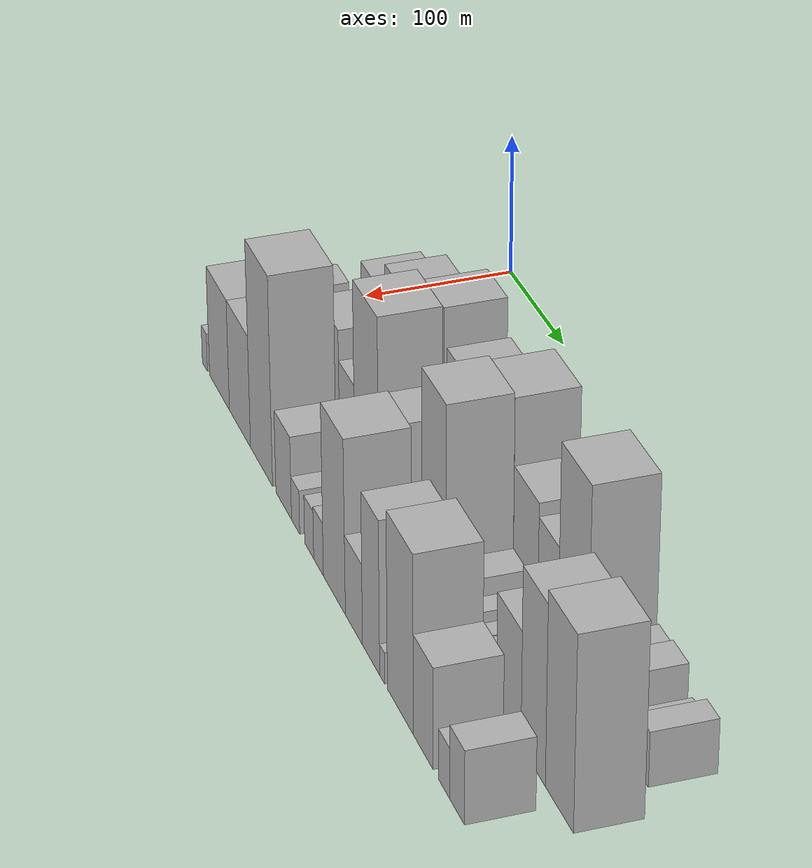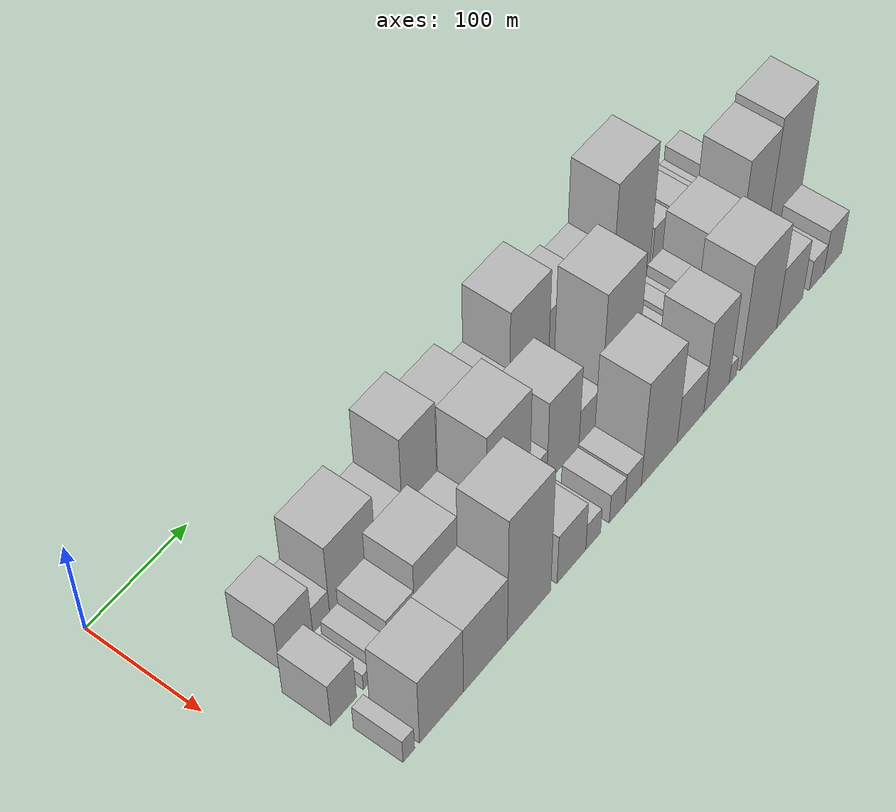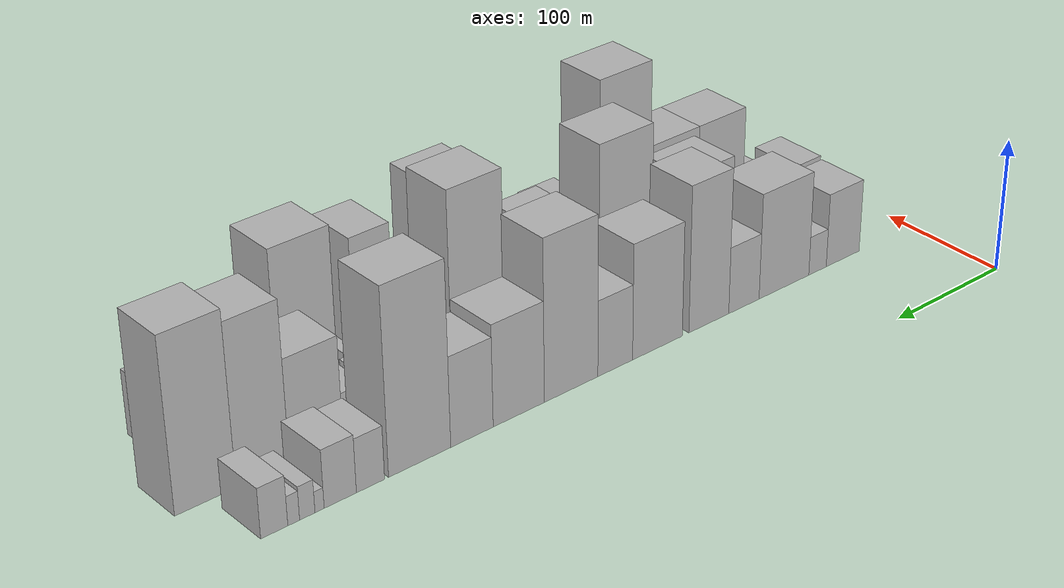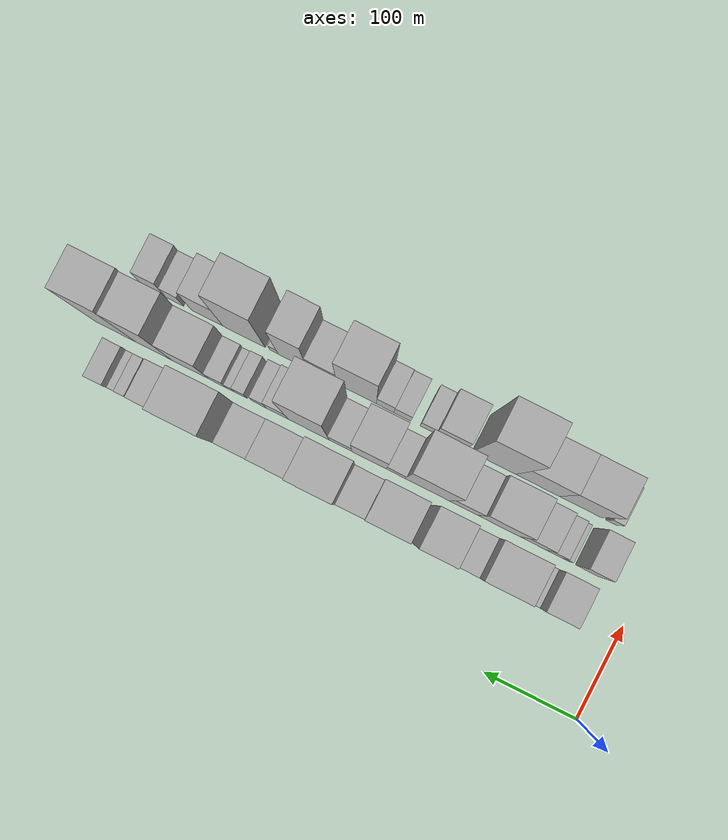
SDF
<sdf version="1.6">
 <world name="default">
  <model name="building_18">
   <static>1</static>
   <pose>100.0000 69.8813 0 0.000000 0.000000 0.000000</pose>
   <link name="link">
    <pose>0 0 28.50 0 0 0</pose>
    <collision name="collision"><geometry><box><size>40.0000 33.2389 57.0000</size></box></geometry></collision>
    <visual name="visual">
     <cast_shadows>0</cast_shadows>
     <geometry><box><size>40.0000 33.2389 57.0000</size></box></geometry>
     <material>
      <script>
       <uri>model://HANNAS_wall/materials/scripts</uri>
       <uri>model://HANNAS_wall/materials/textures</uri>
       <name>vrc/HANNAS_wall</name>
      </script>
     </material>
    </visual>
   </link>
  </model>
  <model name="building_19">
   <static>1</static>
   <pose>100.0000 95.2057 0 0.000000 0.000000 0.000000</pose>
   <link name="link">
    <pose>0 0 15.00 0 0 0</pose>
    <collision name="collision"><geometry><box><size>40.0000 17.4098 30.0000</size></box></geometry></collision>
    <visual name="visual">
     <cast_shadows>0</cast_shadows>
     <geometry><box><size>40.0000 17.4098 30.0000</size></box></geometry>
     <material>
      <script>
       <uri>model://HANNAS_wall/materials/scripts</uri>
       <uri>model://HANNAS_wall/materials/textures</uri>
       <name>vrc/HANNAS_wall</name>
      </script>
     </material>
    </visual>
   </link>
  </model>
  <model name="building_20">
   <static>1</static>
   <pose>100.0000 128.1146 0 0.000000 0.000000 0.000000</pose>
   <link name="link">
    <pose>0 0 40.50 0 0 0</pose>
    <collision name="collision"><geometry><box><size>40.0000 48.4081 81.0000</size></box></geometry></collision>
    <visual name="visual">
     <cast_shadows>0</cast_shadows>
     <geometry><box><size>40.0000 48.4081 81.0000</size></box></geometry>
     <material>
      <script>
       <uri>model://HANNAS_wall/materials/scripts</uri>
       <uri>model://HANNAS_wall/materials/textures</uri>
       <name>vrc/HANNAS_wall</name>
      </script>
     </material>
    </visual>
   </link>
  </model>
  <model name="building_21">
   <static>1</static>
   <pose>100.0000 166.6910 0 0.000000 0.000000 0.000000</pose>
   <link name="link">
    <pose>0 0 25.50 0 0 0</pose>
    <collision name="collision"><geometry><box><size>40.0000 28.7448 51.0000</size></box></geometry></collision>
    <visual name="visual">
     <cast_shadows>0</cast_shadows>
     <geometry><box><size>40.0000 28.7448 51.0000</size></box></geometry>
     <material>
      <script>
       <uri>model://HANNAS_wall/materials/scripts</uri>
       <uri>model://HANNAS_wall/materials/textures</uri>
       <name>vrc/HANNAS_wall</name>
      </script>
     </material>
    </visual>
   </link>
  </model>
  <model name="building_22">
   <static>1</static>
   <pose>100.0000 199.5196 0 0.000000 0.000000 0.000000</pose>
   <link name="link">
    <pose>0 0 55.50 0 0 0</pose>
    <collision name="collision"><geometry><box><size>40.0000 36.9123 111.0000</size></box></geometry></collision>
    <visual name="visual">
     <cast_shadows>0</cast_shadows>
     <geometry><box><size>40.0000 36.9123 111.0000</size></box></geometry>
     <material>
      <script>
       <uri>model://HANNAS_wall/materials/scripts</uri>
       <uri>model://HANNAS_wall/materials/textures</uri>
       <name>vrc/HANNAS_wall</name>
      </script>
     </material>
    </visual>
   </link>
  </model>
  <model name="building_23">
   <static>1</static>
   <pose>100.0000 246.2074 0 0.000000 0.000000 0.000000</pose>
   <link name="link">
    <pose>0 0 43.50 0 0 0</pose>
    <collision name="collision"><geometry><box><size>40.0000 44.4633 87.0000</size></box></geometry></collision>
    <visual name="visual">
     <cast_shadows>0</cast_shadows>
     <geometry><box><size>40.0000 44.4633 87.0000</size></box></geometry>
     <material>
      <script>
       <uri>model://HANNAS_wall/materials/scripts</uri>
       <uri>model://HANNAS_wall/materials/textures</uri>
       <name>vrc/HANNAS_wall</name>
      </script>
     </material>
    </visual>
   </link>
  </model>
  <model name="building_24">
   <static>1</static>
   <pose>100.0000 283.5786 0 0.000000 0.000000 0.000000</pose>
   <link name="link">
    <pose>0 0 28.50 0 0 0</pose>
    <collision name="collision"><geometry><box><size>40.0000 30.2793 57.0000</size></box></geometry></collision>
    <visual name="visual">
     <cast_shadows>0</cast_shadows>
     <geometry><box><size>40.0000 30.2793 57.0000</size></box></geometry>
     <material>
      <script>
       <uri>model://HANNAS_wall/materials/scripts</uri>
       <uri>model://HANNAS_wall/materials/textures</uri>
       <name>vrc/HANNAS_wall</name>
      </script>
     </material>
    </visual>
   </link>
  </model>
  <model name="building_25">
   <static>1</static>
   <pose>100.0000 321.3481 0 0.000000 0.000000 0.000000</pose>
   <link name="link">
    <pose>0 0 60.00 0 0 0</pose>
    <collision name="collision"><geometry><box><size>40.0000 45.2596 120.0000</size></box></geometry></collision>
    <visual name="visual">
     <cast_shadows>0</cast_shadows>
     <geometry><box><size>40.0000 45.2596 120.0000</size></box></geometry>
     <material>
      <script>
       <uri>model://HANNAS_wall/materials/scripts</uri>
       <uri>model://HANNAS_wall/materials/textures</uri>
       <name>vrc/HANNAS_wall</name>
      </script>
     </material>
    </visual>
   </link>
  </model>
  <model name="building_26">
   <static>1</static>
   <pose>100.0000 364.9645 0 0.000000 0.000000 0.000000</pose>
   <link name="link">
    <pose>0 0 37.50 0 0 0</pose>
    <collision name="collision"><geometry><box><size>40.0000 41.9731 75.0000</size></box></geometry></collision>
    <visual name="visual">
     <cast_shadows>0</cast_shadows>
     <geometry><box><size>40.0000 41.9731 75.0000</size></box></geometry>
     <material>
      <script>
       <uri>model://HANNAS_wall/materials/scripts</uri>
       <uri>model://HANNAS_wall/materials/textures</uri>
       <name>vrc/HANNAS_wall</name>
      </script>
     </material>
    </visual>
   </link>
  </model>
  <model name="building_27">
   <static>1</static>
   <pose>100.0000 402.8647 0 0.000000 0.000000 0.000000</pose>
   <link name="link">
    <pose>0 0 33.00 0 0 0</pose>
    <collision name="collision"><geometry><box><size>40.0000 33.8273 66.0000</size></box></geometry></collision>
    <visual name="visual">
     <cast_shadows>0</cast_shadows>
     <geometry><box><size>40.0000 33.8273 66.0000</size></box></geometry>
     <material>
      <script>
       <uri>model://HANNAS_wall/materials/scripts</uri>
       <uri>model://HANNAS_wall/materials/textures</uri>
       <name>vrc/HANNAS_wall</name>
      </script>
     </material>
    </visual>
   </link>
  </model>
  <model name="building_28">
   <static>1</static>
   <pose>100.0000 443.7735 0 0.000000 0.000000 0.000000</pose>
   <link name="link">
    <pose>0 0 67.50 0 0 0</pose>
    <collision name="collision"><geometry><box><size>40.0000 47.9902 135.0000</size></box></geometry></collision>
    <visual name="visual">
     <cast_shadows>0</cast_shadows>
     <geometry><box><size>40.0000 47.9902 135.0000</size></box></geometry>
     <material>
      <script>
       <uri>model://HANNAS_wall/materials/scripts</uri>
       <uri>model://HANNAS_wall/materials/textures</uri>
       <name>vrc/HANNAS_wall</name>
      </script>
     </material>
    </visual>
   </link>
  </model>
  <model name="building_29">
   <static>1</static>
   <pose>100.0000 481.3211 0 0.000000 0.000000 0.000000</pose>
   <link name="link">
    <pose>0 0 19.50 0 0 0</pose>
    <collision name="collision"><geometry><box><size>40.0000 21.1052 39.0000</size></box></geometry></collision>
    <visual name="visual">
     <cast_shadows>0</cast_shadows>
     <geometry><box><size>40.0000 21.1052 39.0000</size></box></geometry>
     <material>
      <script>
       <uri>model://HANNAS_wall/materials/scripts</uri>
       <uri>model://HANNAS_wall/materials/textures</uri>
       <name>vrc/HANNAS_wall</name>
      </script>
     </material>
    </visual>
   </link>
  </model>
  <model name="building_30">
   <static>1</static>
   <pose>100.0000 503.7312 0 0.000000 0.000000 0.000000</pose>
   <link name="link">
    <pose>0 0 21.00 0 0 0</pose>
    <collision name="collision"><geometry><box><size>40.0000 23.7150 42.0000</size></box></geometry></collision>
    <visual name="visual">
     <cast_shadows>0</cast_shadows>
     <geometry><box><size>40.0000 23.7150 42.0000</size></box></geometry>
     <material>
      <script>
       <uri>model://HANNAS_wall/materials/scripts</uri>
       <uri>model://HANNAS_wall/materials/textures</uri>
       <name>vrc/HANNAS_wall</name>
      </script>
     </material>
    </visual>
   </link>
  </model>
  <model name="building_31">
   <static>1</static>
   <pose>100.0000 518.9350 0 0.000000 0.000000 0.000000</pose>
   <link name="link">
    <pose>0 0 7.50 0 0 0</pose>
    <collision name="collision"><geometry><box><size>40.0000 6.6925 15.0000</size></box></geometry></collision>
    <visual name="visual">
     <cast_shadows>0</cast_shadows>
     <geometry><box><size>40.0000 6.6925 15.0000</size></box></geometry>
     <material>
      <script>
       <uri>model://HANNAS_wall/materials/scripts</uri>
       <uri>model://HANNAS_wall/materials/textures</uri>
       <name>vrc/HANNAS_wall</name>
      </script>
     </material>
    </visual>
   </link>
  </model>
  <model name="building_32">
   <static>1</static>
   <pose>100.0000 527.8249 0 0.000000 0.000000 0.000000</pose>
   <link name="link">
    <pose>0 0 12.00 0 0 0</pose>
    <collision name="collision"><geometry><box><size>40.0000 11.0874 24.0000</size></box></geometry></collision>
    <visual name="visual">
     <cast_shadows>0</cast_shadows>
     <geometry><box><size>40.0000 11.0874 24.0000</size></box></geometry>
     <material>
      <script>
       <uri>model://HANNAS_wall/materials/scripts</uri>
       <uri>model://HANNAS_wall/materials/textures</uri>
       <name>vrc/HANNAS_wall</name>
      </script>
     </material>
    </visual>
   </link>
  </model>
  <model name="building_33">
   <static>1</static>
   <pose>100.0000 537.5927 0 0.000000 0.000000 0.000000</pose>
   <link name="link">
    <pose>0 0 10.50 0 0 0</pose>
    <collision name="collision"><geometry><box><size>40.0000 8.4481 21.0000</size></box></geometry></collision>
    <visual name="visual">
     <cast_shadows>0</cast_shadows>
     <geometry><box><size>40.0000 8.4481 21.0000</size></box></geometry>
     <material>
      <script>
       <uri>model://HANNAS_wall/materials/scripts</uri>
       <uri>model://HANNAS_wall/materials/textures</uri>
       <name>vrc/HANNAS_wall</name>
      </script>
     </material>
    </visual>
   </link>
  </model>
  <model name="building_34">
   <static>1</static>
   <pose>100.0000 551.4282 0 0.000000 0.000000 0.000000</pose>
   <link name="link">
    <pose>0 0 18.00 0 0 0</pose>
    <collision name="collision"><geometry><box><size>40.0000 19.2229 36.0000</size></box></geometry></collision>
    <visual name="visual">
     <cast_shadows>0</cast_shadows>
     <geometry><box><size>40.0000 19.2229 36.0000</size></box></geometry>
     <material>
      <script>
       <uri>model://HANNAS_wall/materials/scripts</uri>
       <uri>model://HANNAS_wall/materials/textures</uri>
       <name>vrc/HANNAS_wall</name>
      </script>
     </material>
    </visual>
   </link>
  </model>
  <model name="building_52">
   <static>1</static>
   <pose>152.0000 54.2815 0 0.000000 0.000000 0.000000</pose>
   <link name="link">
    <pose>0 0 25.50 0 0 0</pose>
    <collision name="collision"><geometry><box><size>40.0000 25.6871 51.0000</size></box></geometry></collision>
    <visual name="visual">
     <cast_shadows>0</cast_shadows>
     <geometry><box><size>40.0000 25.6871 51.0000</size></box></geometry>
     <material>
      <script>
       <uri>model://HANNAS_wall/materials/scripts</uri>
       <uri>model://HANNAS_wall/materials/textures</uri>
       <name>vrc/HANNAS_wall</name>
      </script>
     </material>
    </visual>
   </link>
  </model>
  <model name="building_53">
   <static>1</static>
   <pose>152.0000 78.2472 0 0.000000 0.000000 0.000000</pose>
   <link name="link">
    <pose>0 0 9.00 0 0 0</pose>
    <collision name="collision"><geometry><box><size>40.0000 8.2443 18.0000</size></box></geometry></collision>
    <visual name="visual">
     <cast_shadows>0</cast_shadows>
     <geometry><box><size>40.0000 8.2443 18.0000</size></box></geometry>
     <material>
      <script>
       <uri>model://HANNAS_wall/materials/scripts</uri>
       <uri>model://HANNAS_wall/materials/textures</uri>
       <name>vrc/HANNAS_wall</name>
      </script>
     </material>
    </visual>
   </link>
  </model>
  <model name="building_54">
   <static>1</static>
   <pose>152.0000 90.9754 0 0.000000 0.000000 0.000000</pose>
   <link name="link">
    <pose>0 0 16.50 0 0 0</pose>
    <collision name="collision"><geometry><box><size>40.0000 17.2121 33.0000</size></box></geometry></collision>
    <visual name="visual">
     <cast_shadows>0</cast_shadows>
     <geometry><box><size>40.0000 17.2121 33.0000</size></box></geometry>
     <material>
      <script>
       <uri>model://HANNAS_wall/materials/scripts</uri>
       <uri>model://HANNAS_wall/materials/textures</uri>
       <name>vrc/HANNAS_wall</name>
      </script>
     </material>
    </visual>
   </link>
  </model>
  <model name="building_55">
   <static>1</static>
   <pose>152.0000 113.7430 0 0.000000 0.000000 0.000000</pose>
   <link name="link">
    <pose>0 0 25.50 0 0 0</pose>
    <collision name="collision"><geometry><box><size>40.0000 28.3232 51.0000</size></box></geometry></collision>
    <visual name="visual">
     <cast_shadows>0</cast_shadows>
     <geometry><box><size>40.0000 28.3232 51.0000</size></box></geometry>
     <material>
      <script>
       <uri>model://HANNAS_wall/materials/scripts</uri>
       <uri>model://HANNAS_wall/materials/textures</uri>
       <name>vrc/HANNAS_wall</name>
      </script>
     </material>
    </visual>
   </link>
  </model>
  <model name="building_56">
   <static>1</static>
   <pose>152.0000 150.6552 0 0.000000 0.000000 0.000000</pose>
   <link name="link">
    <pose>0 0 40.50 0 0 0</pose>
    <collision name="collision"><geometry><box><size>40.0000 45.5012 81.0000</size></box></geometry></collision>
    <visual name="visual">
     <cast_shadows>0</cast_shadows>
     <geometry><box><size>40.0000 45.5012 81.0000</size></box></geometry>
     <material>
      <script>
       <uri>model://HANNAS_wall/materials/scripts</uri>
       <uri>model://HANNAS_wall/materials/textures</uri>
       <name>vrc/HANNAS_wall</name>
      </script>
     </material>
    </visual>
   </link>
  </model>
  <model name="building_57">
   <static>1</static>
   <pose>152.0000 188.8120 0 0.000000 0.000000 0.000000</pose>
   <link name="link">
    <pose>0 0 30.00 0 0 0</pose>
    <collision name="collision"><geometry><box><size>40.0000 30.8124 60.0000</size></box></geometry></collision>
    <visual name="visual">
     <cast_shadows>0</cast_shadows>
     <geometry><box><size>40.0000 30.8124 60.0000</size></box></geometry>
     <material>
      <script>
       <uri>model://HANNAS_wall/materials/scripts</uri>
       <uri>model://HANNAS_wall/materials/textures</uri>
       <name>vrc/HANNAS_wall</name>
      </script>
     </material>
    </visual>
   </link>
  </model>
  <model name="building_58">
   <static>1</static>
   <pose>152.0000 227.8684 0 0.000000 0.000000 0.000000</pose>
   <link name="link">
    <pose>0 0 66.00 0 0 0</pose>
    <collision name="collision"><geometry><box><size>40.0000 47.3004 132.0000</size></box></geometry></collision>
    <visual name="visual">
     <cast_shadows>0</cast_shadows>
     <geometry><box><size>40.0000 47.3004 132.0000</size></box></geometry>
     <material>
      <script>
       <uri>model://HANNAS_wall/materials/scripts</uri>
       <uri>model://HANNAS_wall/materials/textures</uri>
       <name>vrc/HANNAS_wall</name>
      </script>
     </material>
    </visual>
   </link>
  </model>
  <model name="building_59">
   <static>1</static>
   <pose>152.0000 261.5582 0 0.000000 0.000000 0.000000</pose>
   <link name="link">
    <pose>0 0 19.50 0 0 0</pose>
    <collision name="collision"><geometry><box><size>40.0000 20.0791 39.0000</size></box></geometry></collision>
    <visual name="visual">
     <cast_shadows>0</cast_shadows>
     <geometry><box><size>40.0000 20.0791 39.0000</size></box></geometry>
     <material>
      <script>
       <uri>model://HANNAS_wall/materials/scripts</uri>
       <uri>model://HANNAS_wall/materials/textures</uri>
       <name>vrc/HANNAS_wall</name>
      </script>
     </material>
    </visual>
   </link>
  </model>
  <model name="building_60">
   <static>1</static>
   <pose>152.0000 290.1706 0 0.000000 0.000000 0.000000</pose>
   <link name="link">
    <pose>0 0 46.50 0 0 0</pose>
    <collision name="collision"><geometry><box><size>40.0000 37.1457 93.0000</size></box></geometry></collision>
    <visual name="visual">
     <cast_shadows>0</cast_shadows>
     <geometry><box><size>40.0000 37.1457 93.0000</size></box></geometry>
     <material>
      <script>
       <uri>model://HANNAS_wall/materials/scripts</uri>
       <uri>model://HANNAS_wall/materials/textures</uri>
       <name>vrc/HANNAS_wall</name>
      </script>
     </material>
    </visual>
   </link>
  </model>
  <model name="building_61">
   <static>1</static>
   <pose>152.0000 321.0156 0 0.000000 0.000000 0.000000</pose>
   <link name="link">
    <pose>0 0 21.00 0 0 0</pose>
    <collision name="collision"><geometry><box><size>40.0000 24.5444 42.0000</size></box></geometry></collision>
    <visual name="visual">
     <cast_shadows>0</cast_shadows>
     <geometry><box><size>40.0000 24.5444 42.0000</size></box></geometry>
     <material>
      <script>
       <uri>model://HANNAS_wall/materials/scripts</uri>
       <uri>model://HANNAS_wall/materials/textures</uri>
       <name>vrc/HANNAS_wall</name>
      </script>
     </material>
    </visual>
   </link>
  </model>
  <model name="building_62">
   <static>1</static>
   <pose>152.0000 355.2301 0 0.000000 0.000000 0.000000</pose>
   <link name="link">
    <pose>0 0 72.00 0 0 0</pose>
    <collision name="collision"><geometry><box><size>40.0000 43.8844 144.0000</size></box></geometry></collision>
    <visual name="visual">
     <cast_shadows>0</cast_shadows>
     <geometry><box><size>40.0000 43.8844 144.0000</size></box></geometry>
     <material>
      <script>
       <uri>model://HANNAS_wall/materials/scripts</uri>
       <uri>model://HANNAS_wall/materials/textures</uri>
       <name>vrc/HANNAS_wall</name>
      </script>
     </material>
    </visual>
   </link>
  </model>
  <model name="building_63">
   <static>1</static>
   <pose>152.0000 389.0900 0 0.000000 0.000000 0.000000</pose>
   <link name="link">
    <pose>0 0 21.00 0 0 0</pose>
    <collision name="collision"><geometry><box><size>40.0000 23.8354 42.0000</size></box></geometry></collision>
    <visual name="visual">
     <cast_shadows>0</cast_shadows>
     <geometry><box><size>40.0000 23.8354 42.0000</size></box></geometry>
     <material>
      <script>
       <uri>model://HANNAS_wall/materials/scripts</uri>
       <uri>model://HANNAS_wall/materials/textures</uri>
       <name>vrc/HANNAS_wall</name>
      </script>
     </material>
    </visual>
   </link>
  </model>
  <model name="building_64">
   <static>1</static>
   <pose>152.0000 408.6635 0 0.000000 0.000000 0.000000</pose>
   <link name="link">
    <pose>0 0 15.00 0 0 0</pose>
    <collision name="collision"><geometry><box><size>40.0000 15.3116 30.0000</size></box></geometry></collision>
    <visual name="visual">
     <cast_shadows>0</cast_shadows>
     <geometry><box><size>40.0000 15.3116 30.0000</size></box></geometry>
     <material>
      <script>
       <uri>model://HANNAS_wall/materials/scripts</uri>
       <uri>model://HANNAS_wall/materials/textures</uri>
       <name>vrc/HANNAS_wall</name>
      </script>
     </material>
    </visual>
   </link>
  </model>
  <model name="building_65">
   <static>1</static>
   <pose>152.0000 428.9412 0 0.000000 0.000000 0.000000</pose>
   <link name="link">
    <pose>0 0 13.50 0 0 0</pose>
    <collision name="collision"><geometry><box><size>40.0000 13.2438 27.0000</size></box></geometry></collision>
    <visual name="visual">
     <cast_shadows>0</cast_shadows>
     <geometry><box><size>40.0000 13.2438 27.0000</size></box></geometry>
     <material>
      <script>
       <uri>model://HANNAS_wall/materials/scripts</uri>
       <uri>model://HANNAS_wall/materials/textures</uri>
       <name>vrc/HANNAS_wall</name>
      </script>
     </material>
    </visual>
   </link>
  </model>
  <model name="building_66">
   <static>1</static>
   <pose>152.0000 440.1755 0 0.000000 0.000000 0.000000</pose>
   <link name="link">
    <pose>0 0 10.50 0 0 0</pose>
    <collision name="collision"><geometry><box><size>40.0000 9.2247 21.0000</size></box></geometry></collision>
    <visual name="visual">
     <cast_shadows>0</cast_shadows>
     <geometry><box><size>40.0000 9.2247 21.0000</size></box></geometry>
     <material>
      <script>
       <uri>model://HANNAS_wall/materials/scripts</uri>
       <uri>model://HANNAS_wall/materials/textures</uri>
       <name>vrc/HANNAS_wall</name>
      </script>
     </material>
    </visual>
   </link>
  </model>
  <model name="building_67">
   <static>1</static>
   <pose>152.0000 454.2148 0 0.000000 0.000000 0.000000</pose>
   <link name="link">
    <pose>0 0 16.50 0 0 0</pose>
    <collision name="collision"><geometry><box><size>40.0000 18.8539 33.0000</size></box></geometry></collision>
    <visual name="visual">
     <cast_shadows>0</cast_shadows>
     <geometry><box><size>40.0000 18.8539 33.0000</size></box></geometry>
     <material>
      <script>
       <uri>model://HANNAS_wall/materials/scripts</uri>
       <uri>model://HANNAS_wall/materials/textures</uri>
       <name>vrc/HANNAS_wall</name>
      </script>
     </material>
    </visual>
   </link>
  </model>
  <model name="building_68">
   <static>1</static>
   <pose>152.0000 483.8057 0 0.000000 0.000000 0.000000</pose>
   <link name="link">
    <pose>0 0 37.50 0 0 0</pose>
    <collision name="collision"><geometry><box><size>40.0000 40.3278 75.0000</size></box></geometry></collision>
    <visual name="visual">
     <cast_shadows>0</cast_shadows>
     <geometry><box><size>40.0000 40.3278 75.0000</size></box></geometry>
     <material>
      <script>
       <uri>model://HANNAS_wall/materials/scripts</uri>
       <uri>model://HANNAS_wall/materials/textures</uri>
       <name>vrc/HANNAS_wall</name>
      </script>
     </material>
    </visual>
   </link>
  </model>
  <model name="building_69">
   <static>1</static>
   <pose>152.0000 523.4455 0 0.000000 0.000000 0.000000</pose>
   <link name="link">
    <pose>0 0 58.50 0 0 0</pose>
    <collision name="collision"><geometry><box><size>40.0000 38.9520 117.0000</size></box></geometry></collision>
    <visual name="visual">
     <cast_shadows>0</cast_shadows>
     <geometry><box><size>40.0000 38.9520 117.0000</size></box></geometry>
     <material>
      <script>
       <uri>model://HANNAS_wall/materials/scripts</uri>
       <uri>model://HANNAS_wall/materials/textures</uri>
       <name>vrc/HANNAS_wall</name>
      </script>
     </material>
    </visual>
   </link>
  </model>
  <model name="building_70">
   <static>1</static>
   <pose>152.0000 564.7551 0 0.000000 0.000000 0.000000</pose>
   <link name="link">
    <pose>0 0 63.00 0 0 0</pose>
    <collision name="collision"><geometry><box><size>40.0000 43.6671 126.0000</size></box></geometry></collision>
    <visual name="visual">
     <cast_shadows>0</cast_shadows>
     <geometry><box><size>40.0000 43.6671 126.0000</size></box></geometry>
     <material>
      <script>
       <uri>model://HANNAS_wall/materials/scripts</uri>
       <uri>model://HANNAS_wall/materials/textures</uri>
       <name>vrc/HANNAS_wall</name>
      </script>
     </material>
    </visual>
   </link>
  </model>
  <model name="building_89">
   <static>1</static>
   <pose>204.0000 54.9662 0 0.000000 0.000000 0.000000</pose>
   <link name="link">
    <pose>0 0 13.50 0 0 0</pose>
    <collision name="collision"><geometry><box><size>40.0000 11.7113 27.0000</size></box></geometry></collision>
    <visual name="visual">
     <cast_shadows>0</cast_shadows>
     <geometry><box><size>40.0000 11.7113 27.0000</size></box></geometry>
     <material>
      <script>
       <uri>model://HANNAS_wall/materials/scripts</uri>
       <uri>model://HANNAS_wall/materials/textures</uri>
       <name>vrc/HANNAS_wall</name>
      </script>
     </material>
    </visual>
   </link>
  </model>
  <model name="building_90">
   <static>1</static>
   <pose>204.0000 88.5193 0 0.000000 0.000000 0.000000</pose>
   <link name="link">
    <pose>0 0 39.00 0 0 0</pose>
    <collision name="collision"><geometry><box><size>40.0000 45.3948 78.0000</size></box></geometry></collision>
    <visual name="visual">
     <cast_shadows>0</cast_shadows>
     <geometry><box><size>40.0000 45.3948 78.0000</size></box></geometry>
     <material>
      <script>
       <uri>model://HANNAS_wall/materials/scripts</uri>
       <uri>model://HANNAS_wall/materials/textures</uri>
       <name>vrc/HANNAS_wall</name>
      </script>
     </material>
    </visual>
   </link>
  </model>
  <model name="building_91">
   <static>1</static>
   <pose>204.0000 134.5361 0 0.000000 0.000000 0.000000</pose>
   <link name="link">
    <pose>0 0 39.00 0 0 0</pose>
    <collision name="collision"><geometry><box><size>40.0000 46.6389 78.0000</size></box></geometry></collision>
    <visual name="visual">
     <cast_shadows>0</cast_shadows>
     <geometry><box><size>40.0000 46.6389 78.0000</size></box></geometry>
     <material>
      <script>
       <uri>model://HANNAS_wall/materials/scripts</uri>
       <uri>model://HANNAS_wall/materials/textures</uri>
       <name>vrc/HANNAS_wall</name>
      </script>
     </material>
    </visual>
   </link>
  </model>
  <model name="building_92">
   <static>1</static>
   <pose>204.0000 181.5219 0 0.000000 0.000000 0.000000</pose>
   <link name="link">
    <pose>0 0 72.00 0 0 0</pose>
    <collision name="collision"><geometry><box><size>40.0000 47.3327 144.0000</size></box></geometry></collision>
    <visual name="visual">
     <cast_shadows>0</cast_shadows>
     <geometry><box><size>40.0000 47.3327 144.0000</size></box></geometry>
     <material>
      <script>
       <uri>model://HANNAS_wall/materials/scripts</uri>
       <uri>model://HANNAS_wall/materials/textures</uri>
       <name>vrc/HANNAS_wall</name>
      </script>
     </material>
    </visual>
   </link>
  </model>
  <model name="building_93">
   <static>1</static>
   <pose>204.0000 228.3561 0 0.000000 0.000000 0.000000</pose>
   <link name="link">
    <pose>0 0 28.50 0 0 0</pose>
    <collision name="collision"><geometry><box><size>40.0000 32.3356 57.0000</size></box></geometry></collision>
    <visual name="visual">
     <cast_shadows>0</cast_shadows>
     <geometry><box><size>40.0000 32.3356 57.0000</size></box></geometry>
     <material>
      <script>
       <uri>model://HANNAS_wall/materials/scripts</uri>
       <uri>model://HANNAS_wall/materials/textures</uri>
       <name>vrc/HANNAS_wall</name>
      </script>
     </material>
    </visual>
   </link>
  </model>
  <model name="building_94">
   <static>1</static>
   <pose>204.0000 252.9521 0 0.000000 0.000000 0.000000</pose>
   <link name="link">
    <pose>0 0 15.00 0 0 0</pose>
    <collision name="collision"><geometry><box><size>40.0000 16.8565 30.0000</size></box></geometry></collision>
    <visual name="visual">
     <cast_shadows>0</cast_shadows>
     <geometry><box><size>40.0000 16.8565 30.0000</size></box></geometry>
     <material>
      <script>
       <uri>model://HANNAS_wall/materials/scripts</uri>
       <uri>model://HANNAS_wall/materials/textures</uri>
       <name>vrc/HANNAS_wall</name>
      </script>
     </material>
    </visual>
   </link>
  </model>
  <model name="building_95">
   <static>1</static>
   <pose>204.0000 280.4961 0 0.000000 0.000000 0.000000</pose>
   <link name="link">
    <pose>0 0 16.50 0 0 0</pose>
    <collision name="collision"><geometry><box><size>40.0000 18.2315 33.0000</size></box></geometry></collision>
    <visual name="visual">
     <cast_shadows>0</cast_shadows>
     <geometry><box><size>40.0000 18.2315 33.0000</size></box></geometry>
     <material>
      <script>
       <uri>model://HANNAS_wall/materials/scripts</uri>
       <uri>model://HANNAS_wall/materials/textures</uri>
       <name>vrc/HANNAS_wall</name>
      </script>
     </material>
    </visual>
   </link>
  </model>
  <model name="building_96">
   <static>1</static>
   <pose>204.0000 299.1597 0 0.000000 0.000000 0.000000</pose>
   <link name="link">
    <pose>0 0 18.00 0 0 0</pose>
    <collision name="collision"><geometry><box><size>40.0000 19.0957 36.0000</size></box></geometry></collision>
    <visual name="visual">
     <cast_shadows>0</cast_shadows>
     <geometry><box><size>40.0000 19.0957 36.0000</size></box></geometry>
     <material>
      <script>
       <uri>model://HANNAS_wall/materials/scripts</uri>
       <uri>model://HANNAS_wall/materials/textures</uri>
       <name>vrc/HANNAS_wall</name>
      </script>
     </material>
    </visual>
   </link>
  </model>
  <model name="building_97">
   <static>1</static>
   <pose>204.0000 330.0171 0 0.000000 0.000000 0.000000</pose>
   <link name="link">
    <pose>0 0 58.50 0 0 0</pose>
    <collision name="collision"><geometry><box><size>40.0000 42.6190 117.0000</size></box></geometry></collision>
    <visual name="visual">
     <cast_shadows>0</cast_shadows>
     <geometry><box><size>40.0000 42.6190 117.0000</size></box></geometry>
     <material>
      <script>
       <uri>model://HANNAS_wall/materials/scripts</uri>
       <uri>model://HANNAS_wall/materials/textures</uri>
       <name>vrc/HANNAS_wall</name>
      </script>
     </material>
    </visual>
   </link>
  </model>
  <model name="building_98">
   <static>1</static>
   <pose>204.0000 367.4572 0 0.000000 0.000000 0.000000</pose>
   <link name="link">
    <pose>0 0 27.00 0 0 0</pose>
    <collision name="collision"><geometry><box><size>40.0000 32.2613 54.0000</size></box></geometry></collision>
    <visual name="visual">
     <cast_shadows>0</cast_shadows>
     <geometry><box><size>40.0000 32.2613 54.0000</size></box></geometry>
     <material>
      <script>
       <uri>model://HANNAS_wall/materials/scripts</uri>
       <uri>model://HANNAS_wall/materials/textures</uri>
       <name>vrc/HANNAS_wall</name>
      </script>
     </material>
    </visual>
   </link>
  </model>
  <model name="building_99">
   <static>1</static>
   <pose>204.0000 399.3886 0 0.000000 0.000000 0.000000</pose>
   <link name="link">
    <pose>0 0 51.00 0 0 0</pose>
    <collision name="collision"><geometry><box><size>40.0000 31.6013 102.0000</size></box></geometry></collision>
    <visual name="visual">
     <cast_shadows>0</cast_shadows>
     <geometry><box><size>40.0000 31.6013 102.0000</size></box></geometry>
     <material>
      <script>
       <uri>model://HANNAS_wall/materials/scripts</uri>
       <uri>model://HANNAS_wall/materials/textures</uri>
       <name>vrc/HANNAS_wall</name>
      </script>
     </material>
    </visual>
   </link>
  </model>
  <model name="building_100">
   <static>1</static>
   <pose>204.0000 419.6737 0 0.000000 0.000000 0.000000</pose>
   <link name="link">
    <pose>0 0 10.50 0 0 0</pose>
    <collision name="collision"><geometry><box><size>40.0000 8.9689 21.0000</size></box></geometry></collision>
    <visual name="visual">
     <cast_shadows>0</cast_shadows>
     <geometry><box><size>40.0000 8.9689 21.0000</size></box></geometry>
     <material>
      <script>
       <uri>model://HANNAS_wall/materials/scripts</uri>
       <uri>model://HANNAS_wall/materials/textures</uri>
       <name>vrc/HANNAS_wall</name>
      </script>
     </material>
    </visual>
   </link>
  </model>
  <model name="building_101">
   <static>1</static>
   <pose>204.0000 452.2238 0 0.000000 0.000000 0.000000</pose>
   <link name="link">
    <pose>0 0 58.50 0 0 0</pose>
    <collision name="collision"><geometry><box><size>40.0000 46.1312 117.0000</size></box></geometry></collision>
    <visual name="visual">
     <cast_shadows>0</cast_shadows>
     <geometry><box><size>40.0000 46.1312 117.0000</size></box></geometry>
     <material>
      <script>
       <uri>model://HANNAS_wall/materials/scripts</uri>
       <uri>model://HANNAS_wall/materials/textures</uri>
       <name>vrc/HANNAS_wall</name>
      </script>
     </material>
    </visual>
   </link>
  </model>
  <model name="building_102">
   <static>1</static>
   <pose>204.0000 492.2119 0 0.000000 0.000000 0.000000</pose>
   <link name="link">
    <pose>0 0 33.00 0 0 0</pose>
    <collision name="collision"><geometry><box><size>40.0000 33.8450 66.0000</size></box></geometry></collision>
    <visual name="visual">
     <cast_shadows>0</cast_shadows>
     <geometry><box><size>40.0000 33.8450 66.0000</size></box></geometry>
     <material>
      <script>
       <uri>model://HANNAS_wall/materials/scripts</uri>
       <uri>model://HANNAS_wall/materials/textures</uri>
       <name>vrc/HANNAS_wall</name>
      </script>
     </material>
    </visual>
   </link>
  </model>
  <model name="building_103">
   <static>1</static>
   <pose>204.0000 527.6052 0 0.000000 0.000000 0.000000</pose>
   <link name="link">
    <pose>0 0 16.50 0 0 0</pose>
    <collision name="collision"><geometry><box><size>40.0000 18.9415 33.0000</size></box></geometry></collision>
    <visual name="visual">
     <cast_shadows>0</cast_shadows>
     <geometry><box><size>40.0000 18.9415 33.0000</size></box></geometry>
     <material>
      <script>
       <uri>model://HANNAS_wall/materials/scripts</uri>
       <uri>model://HANNAS_wall/materials/textures</uri>
       <name>vrc/HANNAS_wall</name>
      </script>
     </material>
    </visual>
   </link>
  </model>
  <model name="building_104">
   <static>1</static>
   <pose>204.0000 549.2919 0 0.000000 0.000000 0.000000</pose>
   <link name="link">
    <pose>0 0 24.00 0 0 0</pose>
    <collision name="collision"><geometry><box><size>40.0000 24.4320 48.0000</size></box></geometry></collision>
    <visual name="visual">
     <cast_shadows>0</cast_shadows>
     <geometry><box><size>40.0000 24.4320 48.0000</size></box></geometry>
     <material>
      <script>
       <uri>model://HANNAS_wall/materials/scripts</uri>
       <uri>model://HANNAS_wall/materials/textures</uri>
       <name>vrc/HANNAS_wall</name>
      </script>
     </material>
    </visual>
   </link>
  </model>
 </world>
</sdf>
